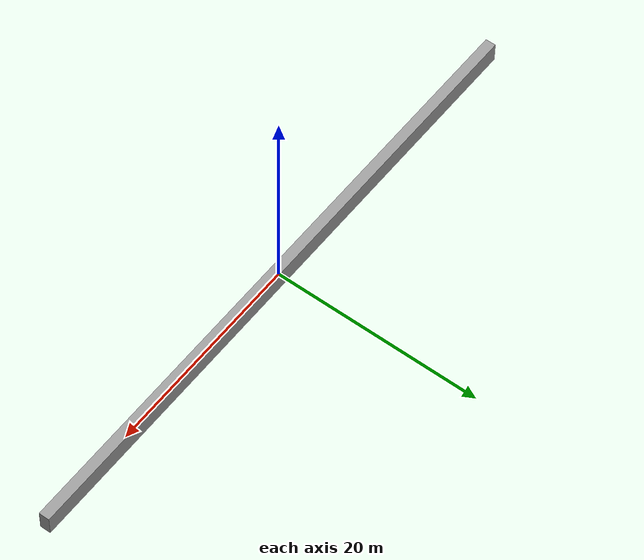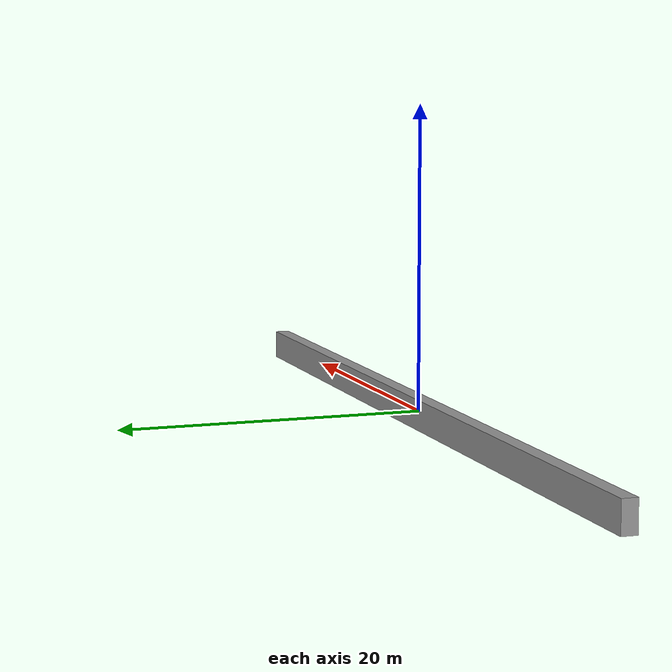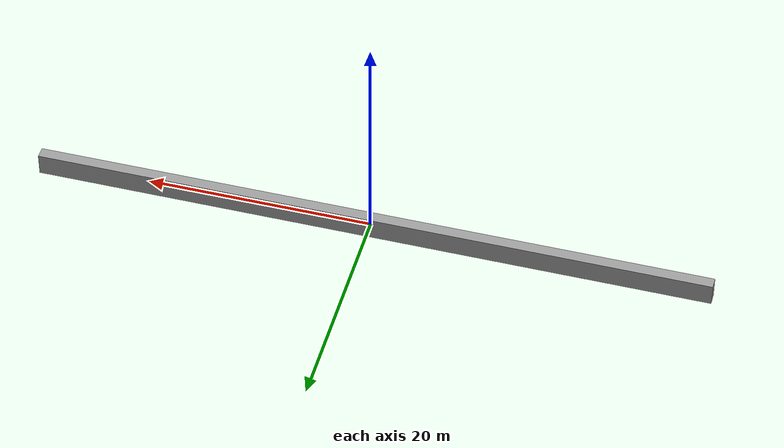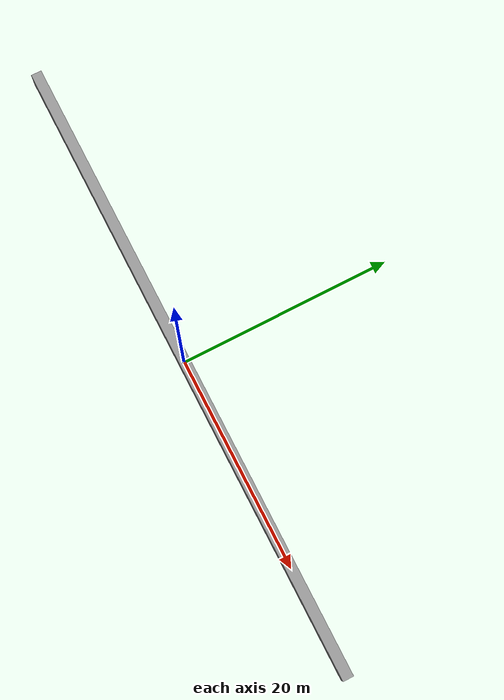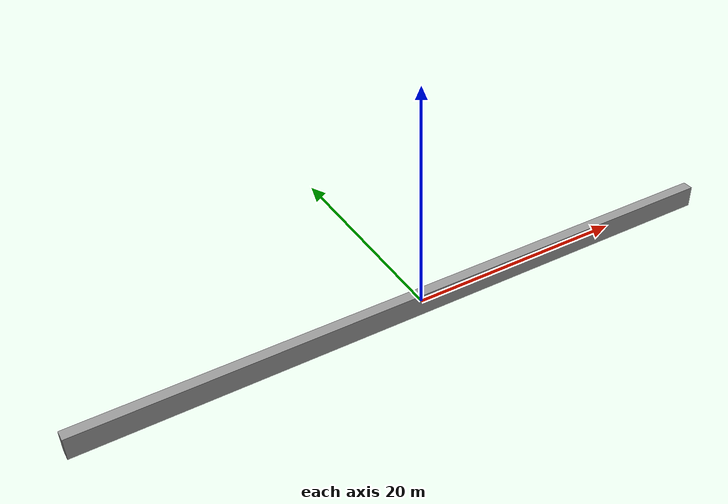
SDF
<?xml version='1.0'?>
<sdf version='1.6'>
  <model name="obs_wall">
    <pose frame=''>0 0 0 0 -0 0</pose>
    <static>true</static>
    <link name="wall_link">
        <inertial>
          <mass>100</mass>
        </inertial>
        <collision name="my_collision">
          <geometry>
            <box>
              <size>60 1 2</size>
            </box>
          </geometry>
        </collision>
        <visual name="my_visual">
          <geometry>
            <box>
              <size>60 1 2</size>
            </box>
          </geometry>
          <material>
            <script>
              <uri>file://media/materials/scripts/gazebo.material</uri>
              <name>Gazebo/Gray</name>
            </script>
            <ambient>1 1 1 1</ambient>
          </material>
        </visual>
    </link>
  </model>
</sdf>
